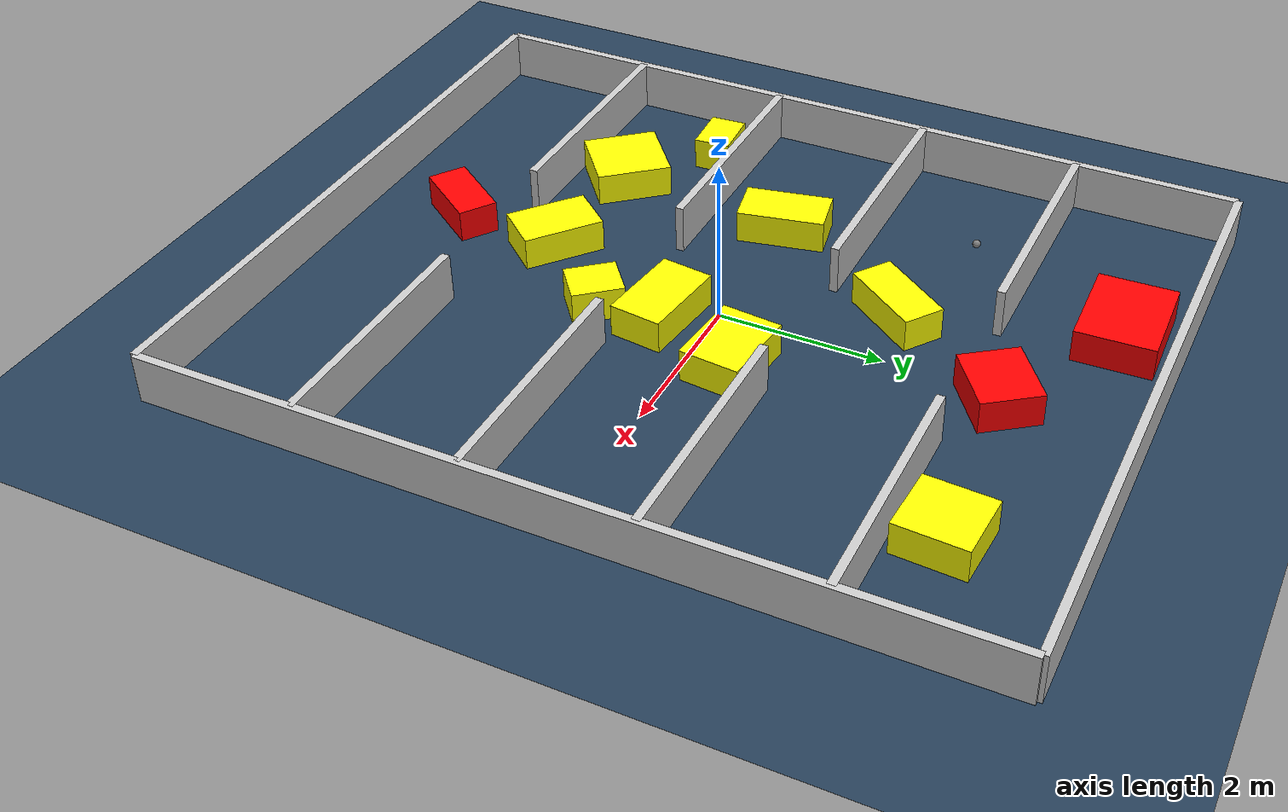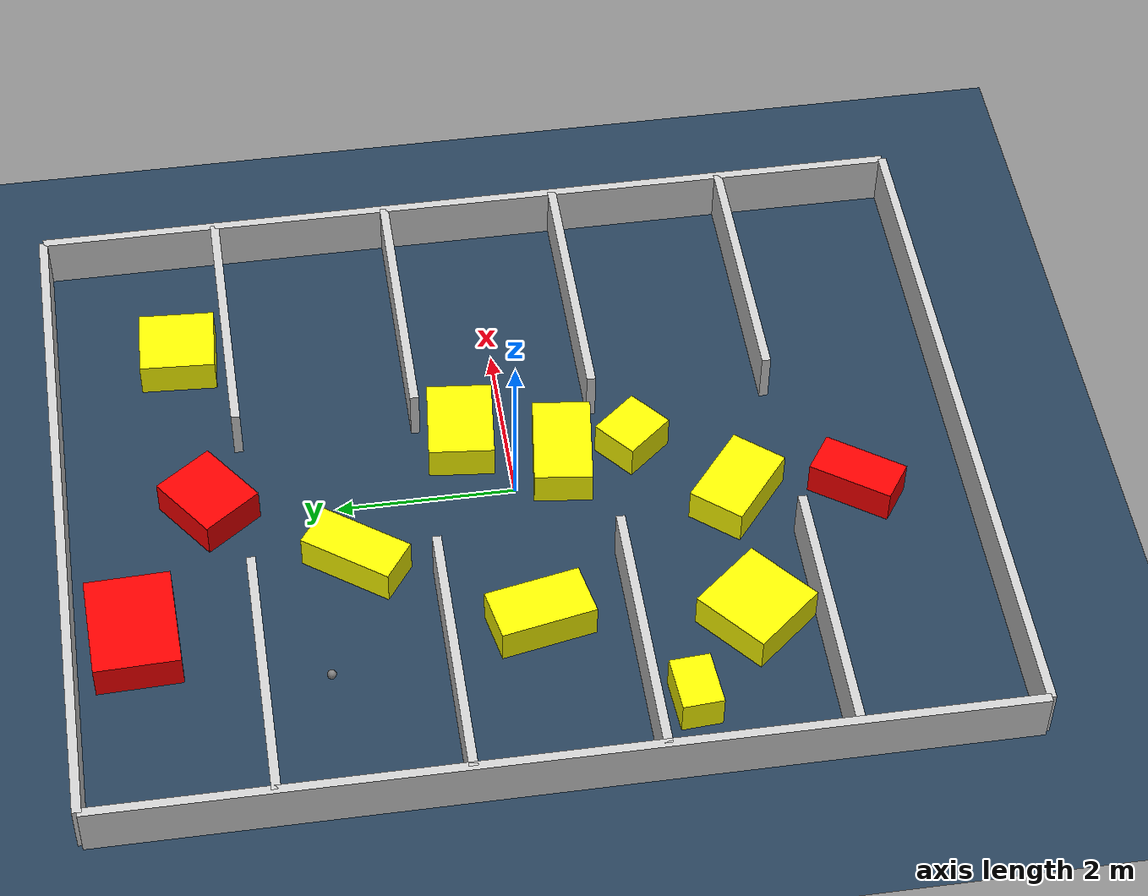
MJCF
<?xml version="1.0" ?>
<mujoco model="generated_environment">
  <option timestep="0.01" integrator="RK4" cone="elliptic"/>
  <default>
    <geom density="1"/>
  </default>
  <asset>
    <texture builtin="gradient" height="3072" rgb1="0.3 0.5 0.7" rgb2="0 0 0" type="skybox" width="512"/>
    <texture builtin="checker" height="300" mark="edge" markrgb="0.8 0.8 0.8" name="groundplane" rgb1="0.2 0.3 0.4" rgb2="0.1 0.2 0.3" type="2d" width="300"/>
    <material name="groundplane" reflectance="0.2" texrepeat="5 5" texture="groundplane" texuniform="true"/>
    <material name="robot" rgba="0.0 1.0 0.0 1"/>
  </asset>
  <worldbody>
    <light dir="0 0 -1" directional="true" pos="0 0 1.5"/>
    <geom condim="4" friction="1.0 0.005 0.001" material="groundplane" name="floor" size="0 0 0.05" type="plane"/>
    <body name="walls">
      <geom name="wall_1" condim="4" pos="-4.0 0.0 0.3" rgba="0.800000011920929 0.800000011920929 0.800000011920929 1.0" size="0.05 5.0 0.3" type="box"/>
      <geom name="wall_2" condim="4" pos="4.0 0.0 0.3" rgba="0.800000011920929 0.800000011920929 0.800000011920929 1.0" size="0.05 5.0 0.3" type="box"/>
      <geom name="wall_3" condim="4" pos="0.0 -5.0 0.3" rgba="0.800000011920929 0.800000011920929 0.800000011920929 1.0" size="4.0 0.05 0.3" type="box"/>
      <geom name="wall_4" condim="4" pos="0.0 5.0 0.3" rgba="0.800000011920929 0.800000011920929 0.800000011920929 1.0" size="4.0 0.05 0.3" type="box"/>
      <geom name="wall_5" condim="4" pos="-2.5 -3.0 0.3" rgba="0.800000011920929 0.800000011920929 0.800000011920929 1.0" size="1.5 0.05 0.3" type="box"/>
      <geom name="wall_6" condim="4" pos="2.5 -3.0 0.3" rgba="0.800000011920929 0.800000011920929 0.800000011920929 1.0" size="1.5 0.05 0.3" type="box"/>
      <geom name="wall_7" condim="4" pos="-2.5 -1.0 0.3" rgba="0.800000011920929 0.800000011920929 0.800000011920929 1.0" size="1.5 0.05 0.3" type="box"/>
      <geom name="wall_8" condim="4" pos="2.5 -1.0 0.3" rgba="0.800000011920929 0.800000011920929 0.800000011920929 1.0" size="1.5 0.05 0.3" type="box"/>
      <geom name="wall_9" condim="4" pos="-2.5 1.0 0.3" rgba="0.800000011920929 0.800000011920929 0.800000011920929 1.0" size="1.5 0.05 0.3" type="box"/>
      <geom name="wall_10" condim="4" pos="2.5 1.0 0.3" rgba="0.800000011920929 0.800000011920929 0.800000011920929 1.0" size="1.5 0.05 0.3" type="box"/>
      <geom name="wall_11" condim="4" pos="-2.5 3.0 0.3" rgba="0.800000011920929 0.800000011920929 0.800000011920929 1.0" size="1.5 0.05 0.3" type="box"/>
      <geom name="wall_12" condim="4" pos="2.5 3.0 0.3" rgba="0.800000011920929 0.800000011920929 0.800000011920929 1.0" size="1.5 0.05 0.3" type="box"/>
    </body>
    <body name="robot">
      <joint name="joint_x" type="slide" pos="0 0 0" axis="1 0 0"/>
      <joint name="joint_y" type="slide" pos="0 0 0" axis="0 1 0"/>
      <geom name="robot" type="sphere" pos="-2.3695863302443043 2.2886283767088536 0.2" size="0.05" mass="5." friction="1.0 0.005 0.0001" condim="4"/>
      <site name="sensor_ball"/>
    </body>
    <body name="obstacle_1_movable">
      <geom name="obstacle_1_movable" condim="4" pos="-0.7976121920916661 1.8602691733719965 0.2" euler="0 0 234.25723712510916" friction="1.0 0.005 0.001" rgba="1 1 0 1" size="0.5406344402539582 0.25410472449807997 0.2" type="box" mass="0.1"/>
      <joint type="free"/>
    </body>
    <body name="obstacle_2_movable">
      <geom name="obstacle_2_movable" condim="4" pos="-2.127829985699516 -2.297125977145374 0.2" euler="0 0 39.98908038870544" friction="1.0 0.005 0.001" rgba="1 1 0 1" size="0.4559271135384593 0.4623952572206428 0.2" type="box" mass="0.1"/>
      <joint type="free"/>
    </body>
    <body name="obstacle_3_movable">
      <geom name="obstacle_3_movable" condim="4" pos="-0.45632385493981076 -2.4050906016845985 0.2" euler="0 0 230.4734035742091" friction="1.0 0.005 0.001" rgba="1 1 0 1" size="0.32254490305128636 0.4967008419592572 0.2" type="box" mass="0.1"/>
      <joint type="free"/>
    </body>
    <body name="obstacle_4_static">
      <geom name="obstacle_4_static" condim="4" pos="-0.517555994817315 -3.7442819213486893 0.2" euler="0 0 55.24501731694449" friction="1.0 0.005 0.001" rgba="1 0 0 1" size="0.4788779610120375 0.2412896080373563 0.2" type="box"/>
    </body>
    <body name="obstacle_5_movable">
      <geom name="obstacle_5_movable" condim="4" pos="2.429782481700613 3.568539690893199 0.2" euler="0 0 86.7231658825122" friction="1.0 0.005 0.001" rgba="1 1 0 1" size="0.4250448429742012 0.40452228094276016 0.2" type="box" mass="0.1"/>
      <joint type="free"/>
    </body>
    <body name="obstacle_6_movable">
      <geom name="obstacle_6_movable" condim="4" pos="0.801023400909108 0.512428090459486 0.2" euler="0 0 174.429895556178" friction="1.0 0.005 0.001" rgba="1 1 0 1" size="0.4870135515902477 0.36614915454014035 0.2" type="box" mass="0.1"/>
      <joint type="free"/>
    </body>
    <body name="obstacle_7_static">
      <geom name="obstacle_7_static" condim="4" pos="-1.525512075836607 4.318291805452228 0.2" euler="0 0 181.8461884004525" friction="1.0 0.005 0.001" rgba="1 0 0 1" size="0.5989435135882626 0.4680051881487162 0.2" type="box"/>
    </body>
    <body name="obstacle_8_movable">
      <geom name="obstacle_8_movable" condim="4" pos="-3.130997594128825 -1.4572852096803404 0.2" euler="0 0 183.80852078384743" friction="1.0 0.005 0.001" rgba="1 1 0 1" size="0.31109632897464146 0.22509080895142822 0.2" type="box" mass="0.1"/>
      <joint type="free"/>
    </body>
    <body name="obstacle_9_movable">
      <geom name="obstacle_9_movable" condim="4" pos="0.45422506344212454 -1.3790952419581952 0.2" euler="0 0 39.74142559536499" friction="1.0 0.005 0.001" rgba="1 1 0 1" size="0.2737216582848907 0.3118393041975691 0.2" type="box" mass="0.1"/>
      <joint type="free"/>
    </body>
    <body name="obstacle_10_static">
      <geom name="obstacle_10_static" condim="4" pos="0.1653230159512642 3.3900859370010927 0.2" euler="0 0 306.01423816921033" friction="1.0 0.005 0.001" rgba="1 0 0 1" size="0.3686655957596534 0.4271353032760825 0.2" type="box"/>
    </body>
    <body name="obstacle_11_movable">
      <geom name="obstacle_11_movable" condim="4" pos="-1.8800571853383548 -0.0013926570141515882 0.2" euler="0 0 11.208734817907725" friction="1.0 0.005 0.001" rgba="1 1 0 1" size="0.29870427267926436 0.5352602237878354 0.2" type="box" mass="0.1"/>
      <joint type="free"/>
    </body>
    <body name="obstacle_12_movable">
      <geom name="obstacle_12_movable" condim="4" pos="0.3329448808368749 -0.5715034420580318 0.2" euler="0 0 352.921496361344" friction="1.0 0.005 0.001" rgba="1 1 0 1" size="0.5491097747638949 0.3243314135612624 0.2" type="box" mass="0.1"/>
      <joint type="free"/>
    </body>
  </worldbody>
  <actuator>
    <motor name="actuator_x" joint="joint_x" gear="1" ctrlrange="-1 1"/>
    <motor name="actuator_y" joint="joint_y" gear="1" ctrlrange="-1 1"/>
  </actuator>
</mujoco>
